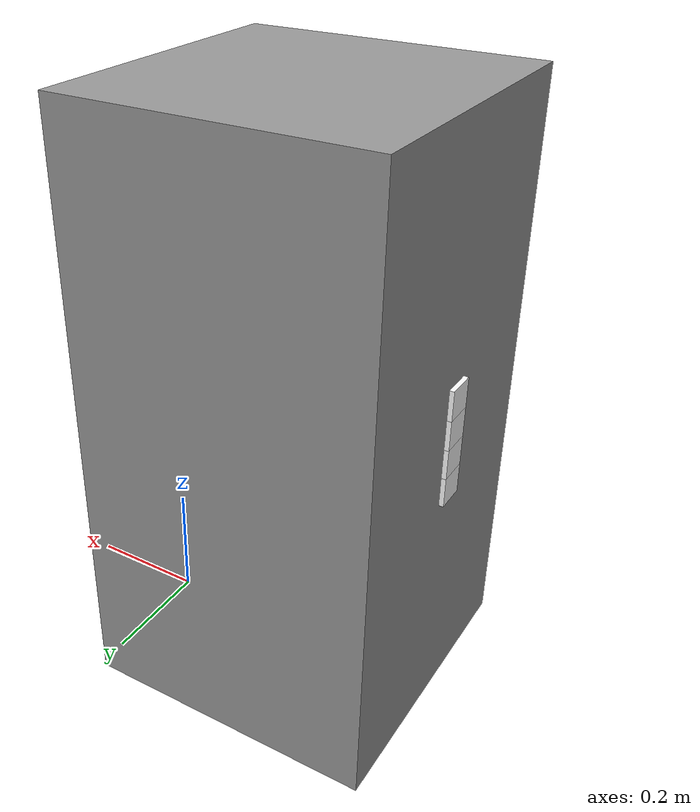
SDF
<?xml version='1.0'?>
<sdf version='1.7'>
  <model name='Apriltags_4_piller'>
    <link name='1st_tag'>
      <pose>-0.51 0 0.425 0 -0 0</pose>
      <self_collide>0</self_collide>
      <enable_wind>0</enable_wind>
      <kinematic>0</kinematic>
      <gravity>1</gravity>
      <inertial>
        <mass>1</mass>
        <pose>0 0 0 0 -0 0</pose>
        <inertia>
          <ixx>1</ixx>
          <ixy>0</ixy>
          <ixz>0</ixz>
          <iyy>1</iyy>
          <iyz>0</iyz>
          <izz>1</izz>
        </inertia>
      </inertial>
      <visual name='main_Visual'>
        <geometry>
          <box>
            <size>0.01 0.05 0.05</size>
          </box>
        </geometry>
        <material>
          <script>
            <uri>model://Apriltag36_11_00000/materials/scripts</uri>
            <uri>model://Apriltag36_11_00000/materials/textures</uri>
            <name>Apriltag36_11_00000</name>
          </script>
          <shader type='pixel'>
            <normal_map>__default__</normal_map>
          </shader>
          <ambient>1 1 1 1</ambient>
          <diffuse>1 1 1 1</diffuse>
          <specular>0 0 0 1</specular>
          <emissive>0 0 0 1</emissive>
        </material>
        <pose>0 0 0 0 -0 0</pose>
        <transparency>0</transparency>
        <cast_shadows>1</cast_shadows>
      </visual>
    </link>
    <link name='2nd_tag'>
      <pose>-0.51 0 0.475 0 -0 0</pose>
      <self_collide>0</self_collide>
      <enable_wind>0</enable_wind>
      <kinematic>0</kinematic>
      <gravity>1</gravity>
      <inertial>
        <mass>1</mass>
        <pose>0 0 0 0 -0 0</pose>
        <inertia>
          <ixx>1</ixx>
          <ixy>0</ixy>
          <ixz>0</ixz>
          <iyy>1</iyy>
          <iyz>0</iyz>
          <izz>1</izz>
        </inertia>
      </inertial>
      <visual name='main_Visual'>
        <geometry>
          <box>
            <size>0.01 0.05 0.05</size>
          </box>
        </geometry>
        <material>
          <script>
            <uri>model://Apriltag36_11_00001/materials/scripts</uri>
            <uri>model://Apriltag36_11_00001/materials/textures</uri>
            <name>Apriltag36_11_00001</name>
          </script>
          <shader type='pixel'>
            <normal_map>__default__</normal_map>
          </shader>
          <ambient>1 1 1 1</ambient>
          <diffuse>1 1 1 1</diffuse>
          <specular>0 0 0 1</specular>
          <emissive>0 0 0 1</emissive>
        </material>
        <pose>0 0 0 0 -0 0</pose>
        <transparency>0</transparency>
        <cast_shadows>1</cast_shadows>
      </visual>
    </link>
    <link name='3rd_tag'>
      <pose>-0.51 0 0.525 0 -0 0</pose>
      <self_collide>0</self_collide>
      <enable_wind>0</enable_wind>
      <kinematic>0</kinematic>
      <gravity>1</gravity>
      <inertial>
        <mass>1</mass>
        <pose>0 0 0 0 -0 0</pose>
        <inertia>
          <ixx>1</ixx>
          <ixy>0</ixy>
          <ixz>0</ixz>
          <iyy>1</iyy>
          <iyz>0</iyz>
          <izz>1</izz>
        </inertia>
      </inertial>
      <visual name='main_Visual'>
        <geometry>
          <box>
            <size>0.01 0.05 0.05</size>
          </box>
        </geometry>
        <material>
          <script>
            <uri>model://Apriltag36_11_00002/materials/scripts</uri>
            <uri>model://Apriltag36_11_00002/materials/textures</uri>
            <name>Apriltag36_11_00002</name>
          </script>
          <shader type='pixel'>
            <normal_map>__default__</normal_map>
          </shader>
          <ambient>1 1 1 1</ambient>
          <diffuse>1 1 1 1</diffuse>
          <specular>0 0 0 1</specular>
          <emissive>0 0 0 1</emissive>
        </material>
        <pose>0 0 0 0 -0 0</pose>
        <transparency>0</transparency>
        <cast_shadows>1</cast_shadows>
      </visual>
    </link>
    <link name='4th_tag'>
      <pose>-0.51 0 0.575 0 -0 0</pose>
      <self_collide>0</self_collide>
      <enable_wind>0</enable_wind>
      <kinematic>0</kinematic>
      <gravity>1</gravity>
      <inertial>
        <mass>1</mass>
        <pose>0 0 0 0 -0 0</pose>
        <inertia>
          <ixx>1</ixx>
          <ixy>0</ixy>
          <ixz>0</ixz>
          <iyy>1</iyy>
          <iyz>0</iyz>
          <izz>1</izz>
        </inertia>
      </inertial>
      <visual name='main_Visual'>
        <geometry>
          <box>
            <size>0.01 0.05 0.05</size>
          </box>
        </geometry>
        <material>
          <script>
            <uri>model://Apriltag36_11_00003/materials/scripts</uri>
            <uri>model://Apriltag36_11_00003/materials/textures</uri>
            <name>Apriltag36_11_00003</name>
          </script>
          <shader type='pixel'>
            <normal_map>__default__</normal_map>
          </shader>
          <ambient>1 1 1 1</ambient>
          <diffuse>1 1 1 1</diffuse>
          <specular>0 0 0 1</specular>
          <emissive>0 0 0 1</emissive>
        </material>
        <pose>0 0 0 0 -0 0</pose>
        <transparency>0</transparency>
        <cast_shadows>1</cast_shadows>
      </visual>
    </link>
    <link name='link_2'>
      <inertial>
        <mass>1</mass>
        <inertia>
          <ixx>0.166667</ixx>
          <ixy>0</ixy>
          <ixz>0</ixz>
          <iyy>0.166667</iyy>
          <iyz>0</iyz>
          <izz>0.166667</izz>
        </inertia>
        <pose>0 0 0 0 -0 0</pose>
      </inertial>
      <pose>-0.257406 0.004288 0.5 0 -0 0</pose>
      <gravity>1</gravity>
      <self_collide>0</self_collide>
      <kinematic>0</kinematic>
      <enable_wind>0</enable_wind>
      <visual name='visual'>
        <pose>0 0 0 0 -0 0</pose>
        <geometry>
          <box>
            <size>0.5 0.5 1</size>
          </box>
        </geometry>
        <material>
          <lighting>1</lighting>
          <script>
            <uri>file://media/materials/scripts/gazebo.material</uri>
            <name>Gazebo/Grey</name>
          </script>
          <shader type='pixel'>
            <normal_map>__default__</normal_map>
          </shader>
          <ambient>0.3 0.3 0.3 1</ambient>
          <diffuse>0.7 0.7 0.7 1</diffuse>
          <specular>0.01 0.01 0.01 1</specular>
          <emissive>0 0 0 1</emissive>
        </material>
        <transparency>0</transparency>
        <cast_shadows>1</cast_shadows>
      </visual>
      <collision name='collision'>
        <laser_retro>0</laser_retro>
        <max_contacts>10</max_contacts>
        <pose>0 0 0 0 -0 0</pose>
        <geometry>
          <box>
            <size>0.5 0.5 1</size>
          </box>
        </geometry>
        <surface>
          <friction>
            <ode>
              <mu>1</mu>
              <mu2>1</mu2>
              <fdir1>0 0 0</fdir1>
              <slip1>0</slip1>
              <slip2>0</slip2>
            </ode>
            <torsional>
              <coefficient>1</coefficient>
              <patch_radius>0</patch_radius>
              <surface_radius>0</surface_radius>
              <use_patch_radius>1</use_patch_radius>
              <ode>
                <slip>0</slip>
              </ode>
            </torsional>
          </friction>
          <bounce>
            <restitution_coefficient>0</restitution_coefficient>
            <threshold>1e+06</threshold>
          </bounce>
          <contact>
            <collide_without_contact>0</collide_without_contact>
            <collide_without_contact_bitmask>1</collide_without_contact_bitmask>
            <collide_bitmask>1</collide_bitmask>
            <ode>
              <soft_cfm>0</soft_cfm>
              <soft_erp>0.2</soft_erp>
              <kp>1e+13</kp>
              <kd>1</kd>
              <max_vel>0.01</max_vel>
              <min_depth>0</min_depth>
            </ode>
            <bullet>
              <split_impulse>1</split_impulse>
              <split_impulse_penetration_threshold>-0.01</split_impulse_penetration_threshold>
              <soft_cfm>0</soft_cfm>
              <soft_erp>0.2</soft_erp>
              <kp>1e+13</kp>
              <kd>1</kd>
            </bullet>
          </contact>
        </surface>
      </collision>
    </link>
    <static>1</static>
    <allow_auto_disable>1</allow_auto_disable>
  </model>
</sdf>
